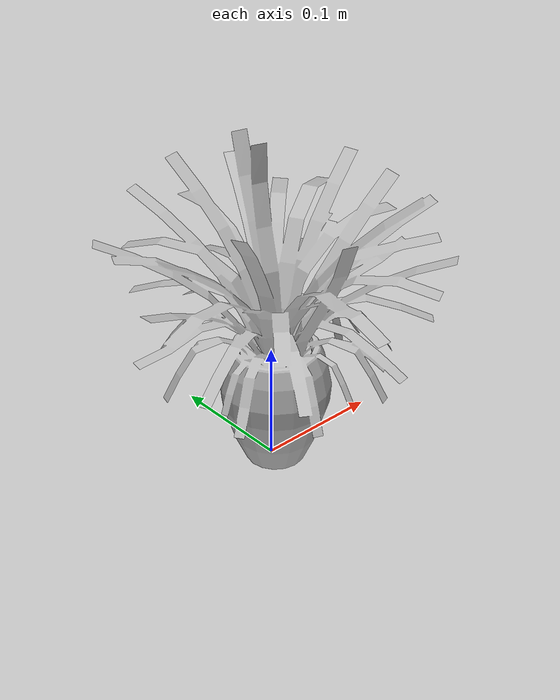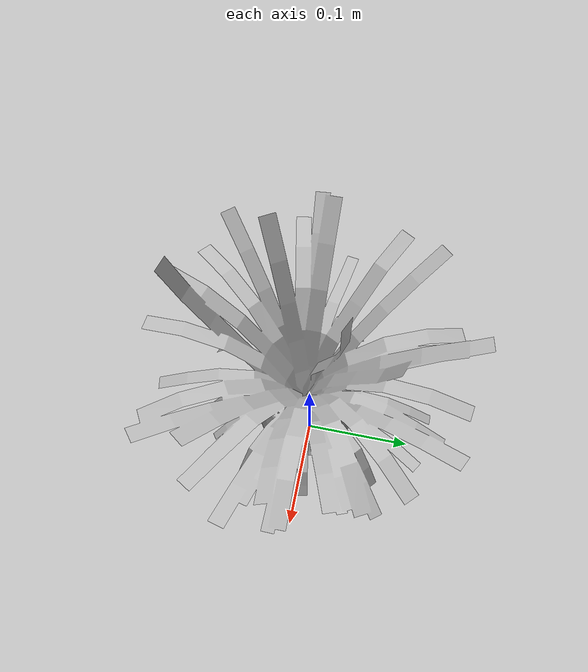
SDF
<?xml version='1.0'?>
<sdf version='1.4'>
  <model name='741'>
    <pose>0 0 0 0 0 0</pose>
    <static>true</static>
    <link name='link'>
      <collision name='collision'>
        <pose>0 0 0 0 0 0</pose>
        <geometry>
          <box>
            <size>0.279061 0.27056 2</size>
          </box>
        </geometry>
      </collision>
      <visual name='visual'>
        <pose>0 0 0 0 0 0</pose>
        <geometry>
          <mesh><uri>model://741/741.dae</uri></mesh>
        </geometry>
      </visual>
    </link>
  </model>
</sdf>
